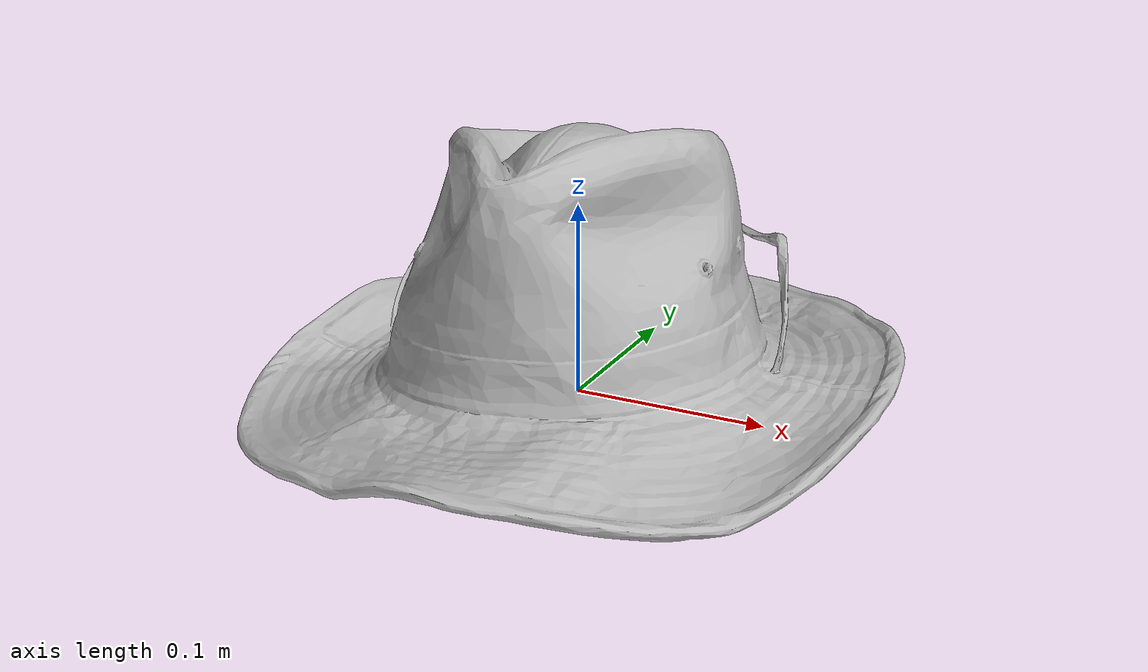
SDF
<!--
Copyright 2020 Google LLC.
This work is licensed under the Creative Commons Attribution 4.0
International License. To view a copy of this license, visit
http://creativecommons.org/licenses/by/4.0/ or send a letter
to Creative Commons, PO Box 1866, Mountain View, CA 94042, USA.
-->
<?xml version="1.0" ?>
<sdf version="1.6">
  <model name="DPC_Handmade_Hat_Brown">
    <link name="link_0">
      <visual name="visual">
        <geometry>
          <mesh>
            <uri>model://hat/meshes/model.obj</uri>
          </mesh>
        </geometry>
      </visual>
      <collision name="collision_0">
        <geometry>
          <mesh>
            <uri>model://hat/meshes/model.obj</uri>
          </mesh>
        </geometry>
      </collision>
    </link>
  </model>
</sdf>
